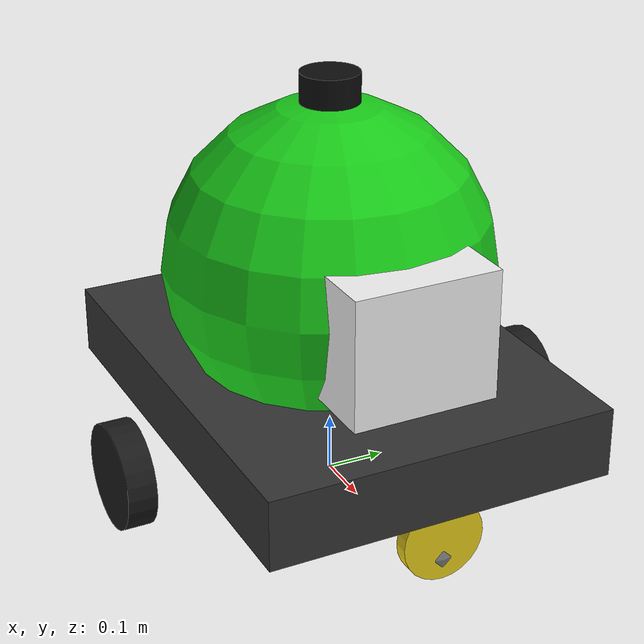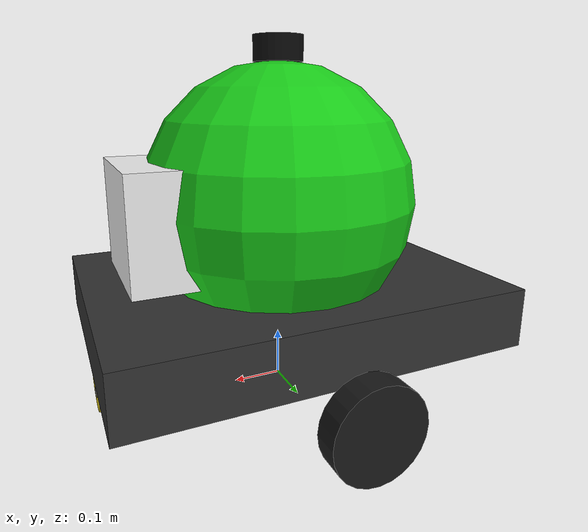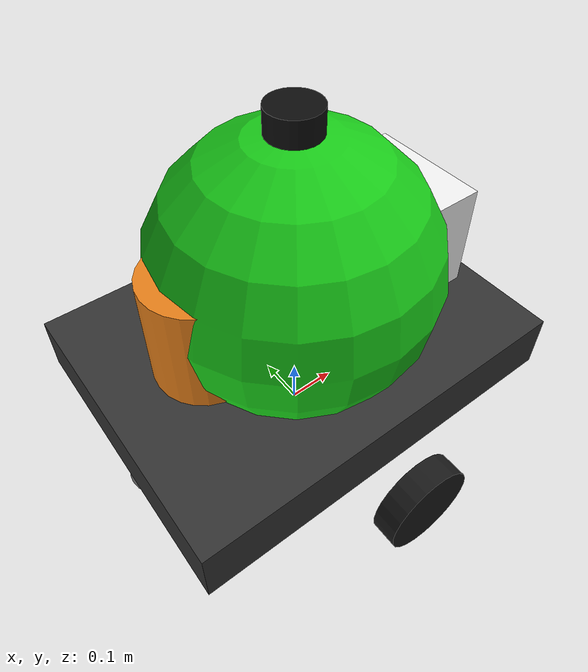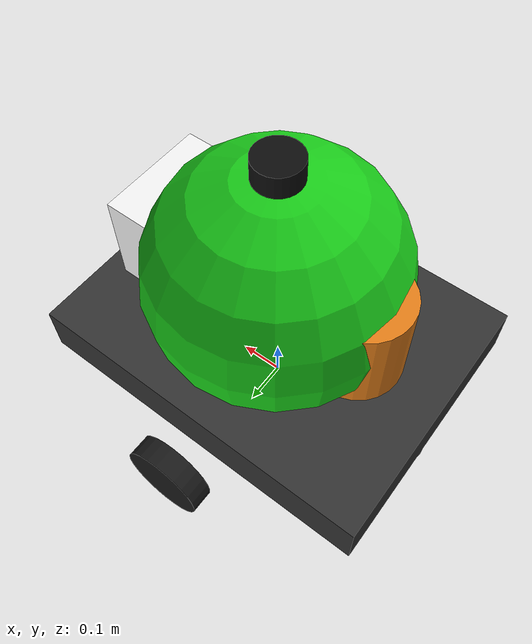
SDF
<?xml version="1.0" ?>
<sdf version="1.6">
  <model name="hybrid_robot">
    <static>false</static>

    <!-- BASE BODY - green sphere on a platform -->
    <link name="base_link">
      <pose>0 0 0.18 0 0 0</pose>
      <inertial>
        <mass>7.0</mass>
        <inertia><ixx>0.15</ixx><ixy>0</ixy><ixz>0</ixz><iyy>0.18</iyy><iyz>0</iyz><izz>0.2</izz></inertia>
      </inertial>
      <collision name="collision">
        <geometry><box><size>0.8 0.6 0.25</size></box></geometry>
      </collision>
      <!-- Platform base (dark grey) -->
      <visual name="visual_platform">
        <geometry><box><size>0.8 0.6 0.12</size></box></geometry>
        <material><ambient>0.2 0.2 0.2 1</ambient></material>
      </visual>
      <!-- Green sphere on top (main body) -->
      <visual name="visual_sphere">
        <pose>0 0 0.22 0 0 0</pose>
        <geometry><sphere><radius>0.28</radius></sphere></geometry>
        <material><ambient>0.1 0.8 0.1 1</ambient><diffuse>0.1 0.8 0.1 1</diffuse></material>
      </visual>
      <!-- White storage box (front) -->
      <visual name="visual_storage">
        <pose>0.18 0 0.2 0 0 0</pose>
        <geometry><box><size>0.3 0.25 0.22</size></box></geometry>
        <material><ambient>0.95 0.95 0.95 1</ambient></material>
      </visual>
      <!-- Orange cleaning tank (back) -->
      <visual name="visual_tank">
        <pose>-0.2 0 0.2 0 0 0</pose>
        <geometry><cylinder><radius>0.1</radius><length>0.22</length></cylinder></geometry>
        <material><ambient>0.9 0.5 0.1 1</ambient></material>
      </visual>
      <!-- Cleaning brush (front bottom, yellow) -->
      <visual name="visual_brush">
        <pose>0.38 0 -0.1 0 1.5708 0</pose>
        <geometry><cylinder><radius>0.07</radius><length>0.025</length></cylinder></geometry>
        <material><ambient>0.9 0.8 0.1 1</ambient></material>
      </visual>
      <!-- LiDAR black cylinder on top of sphere -->
      <visual name="visual_lidar_body">
        <pose>0 0 0.52 0 0 0</pose>
        <geometry><cylinder><radius>0.05</radius><length>0.05</length></cylinder></geometry>
        <material><ambient>0.05 0.05 0.05 1</ambient></material>
      </visual>
    </link>

    <!-- LEFT WHEEL -->
    <link name="left_wheel">
      <pose>0 0.38 0.09 -1.5708 0 0</pose>
      <inertial><mass>0.8</mass><inertia><ixx>0.005</ixx><ixy>0</ixy><ixz>0</ixz><iyy>0.005</iyy><iyz>0</iyz><izz>0.005</izz></inertia></inertial>
      <collision name="collision">
        <geometry><cylinder><radius>0.09</radius><length>0.05</length></cylinder></geometry>
        <surface><friction><ode><mu>1.0</mu><mu2>1.0</mu2></ode></friction></surface>
      </collision>
      <visual name="visual">
        <geometry><cylinder><radius>0.09</radius><length>0.05</length></cylinder></geometry>
        <material><ambient>0.1 0.1 0.1 1</ambient></material>
      </visual>
    </link>
    <joint name="left_wheel_joint" type="revolute">
      <parent>base_link</parent><child>left_wheel</child>
      <axis><xyz>0 0 1</xyz><limit><lower>-1e+16</lower><upper>1e+16</upper></limit></axis>
    </joint>

    <!-- RIGHT WHEEL -->
    <link name="right_wheel">
      <pose>0 -0.38 0.09 -1.5708 0 0</pose>
      <inertial><mass>0.8</mass><inertia><ixx>0.005</ixx><ixy>0</ixy><ixz>0</ixz><iyy>0.005</iyy><iyz>0</iyz><izz>0.005</izz></inertia></inertial>
      <collision name="collision">
        <geometry><cylinder><radius>0.09</radius><length>0.05</length></cylinder></geometry>
        <surface><friction><ode><mu>1.0</mu><mu2>1.0</mu2></ode></friction></surface>
      </collision>
      <visual name="visual">
        <geometry><cylinder><radius>0.09</radius><length>0.05</length></cylinder></geometry>
        <material><ambient>0.1 0.1 0.1 1</ambient></material>
      </visual>
    </link>
    <joint name="right_wheel_joint" type="revolute">
      <parent>base_link</parent><child>right_wheel</child>
      <axis><xyz>0 0 1</xyz><limit><lower>-1e+16</lower><upper>1e+16</upper></limit></axis>
    </joint>

    <!-- FRONT CASTER -->
    <link name="caster_front">
      <pose>0.35 0 0.045 0 0 0</pose>
      <inertial><mass>0.1</mass><inertia><ixx>0.001</ixx><ixy>0</ixy><ixz>0</ixz><iyy>0.001</iyy><iyz>0</iyz><izz>0.001</izz></inertia></inertial>
      <collision name="col"><geometry><sphere><radius>0.045</radius></sphere></geometry><surface><friction><ode><mu>0.0</mu><mu2>0.0</mu2></ode></friction></surface></collision>
      <visual name="vis"><geometry><sphere><radius>0.045</radius></sphere></geometry><material><ambient>0.5 0.5 0.5 1</ambient></material></visual>
    </link>
    <joint name="caster_front_joint" type="fixed"><parent>base_link</parent><child>caster_front</child></joint>

    <!-- BACK CASTER -->
    <link name="caster_back">
      <pose>-0.35 0 0.045 0 0 0</pose>
      <inertial><mass>0.1</mass><inertia><ixx>0.001</ixx><ixy>0</ixy><ixz>0</ixz><iyy>0.001</iyy><iyz>0</iyz><izz>0.001</izz></inertia></inertial>
      <collision name="col"><geometry><sphere><radius>0.045</radius></sphere></geometry><surface><friction><ode><mu>0.0</mu><mu2>0.0</mu2></ode></friction></surface></collision>
      <visual name="vis"><geometry><sphere><radius>0.045</radius></sphere></geometry><material><ambient>0.5 0.5 0.5 1</ambient></material></visual>
    </link>
    <joint name="caster_back_joint" type="fixed"><parent>base_link</parent><child>caster_back</child></joint>

    <!-- LIDAR SENSOR -->
    <link name="lidar_link">
      <pose>0 0 0.6 0 0 0</pose>
      <inertial><mass>0.05</mass><inertia><ixx>0.0001</ixx><ixy>0</ixy><ixz>0</ixz><iyy>0.0001</iyy><iyz>0</iyz><izz>0.0001</izz></inertia></inertial>
      <sensor name="lidar" type="ray">
        <always_on>true</always_on>
        <visualize>true</visualize>
        <update_rate>10</update_rate>
        <ray>
          <scan><horizontal><samples>360</samples><resolution>1</resolution><min_angle>-3.14159</min_angle><max_angle>3.14159</max_angle></horizontal></scan>
          <range><min>0.15</min><max>10.0</max><resolution>0.01</resolution></range>
        </ray>
        <plugin name="hybrid_lidar_plugin" filename="libgazebo_ros_ray_sensor.so">
          <ros><namespace>/hybrid</namespace><remapping>~/out:=scan</remapping></ros>
          <output_type>sensor_msgs/LaserScan</output_type>
          <frame_name>hybrid/lidar_link</frame_name>
        </plugin>
      </sensor>
    </link>
    <joint name="lidar_joint" type="fixed"><parent>base_link</parent><child>lidar_link</child></joint>

    <!-- DIFF DRIVE PLUGIN -->
    <plugin name="hybrid_diff_drive" filename="libgazebo_ros_diff_drive.so">
      <ros>
        <namespace>/hybrid</namespace>
        <remapping>cmd_vel:=cmd_vel</remapping>
        <remapping>odom:=odom</remapping>
      </ros>
      <left_joint>left_wheel_joint</left_joint>
      <right_joint>right_wheel_joint</right_joint>
      <wheel_separation>0.76</wheel_separation>
      <wheel_diameter>0.18</wheel_diameter>
      <max_wheel_torque>25</max_wheel_torque>
      <max_wheel_acceleration>1.0</max_wheel_acceleration>
      <publish_odom>true</publish_odom>
      <publish_odom_tf>true</publish_odom_tf>
      <publish_wheel_tf>true</publish_wheel_tf>
      <odometry_frame>hybrid/odom</odometry_frame>
      <robot_base_frame>hybrid/base_link</robot_base_frame>
    </plugin>

  </model>
</sdf>
